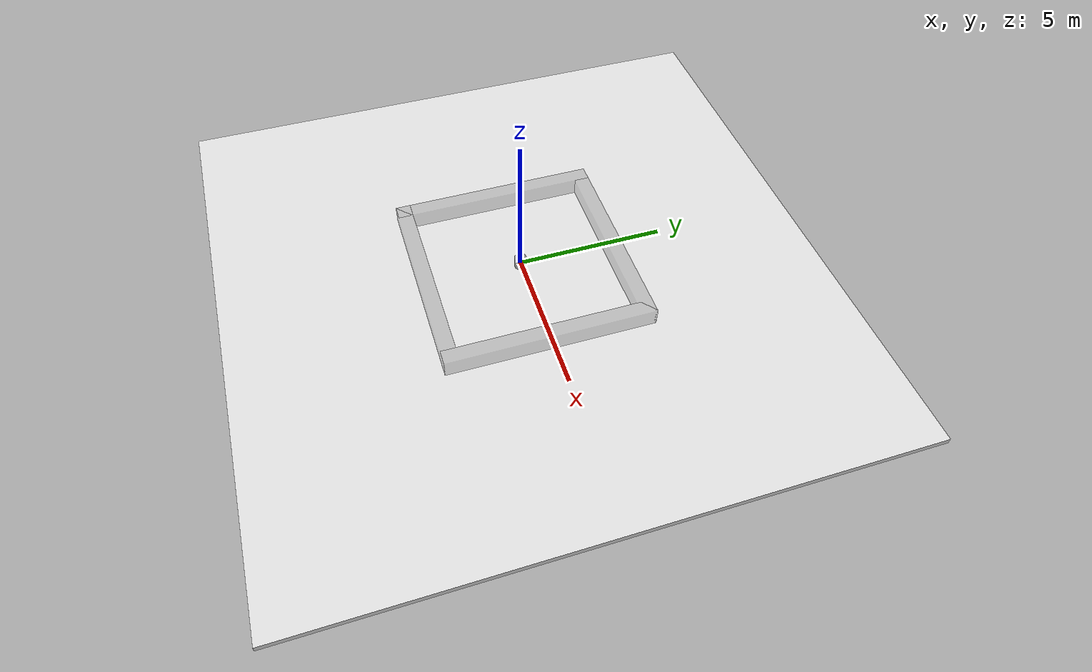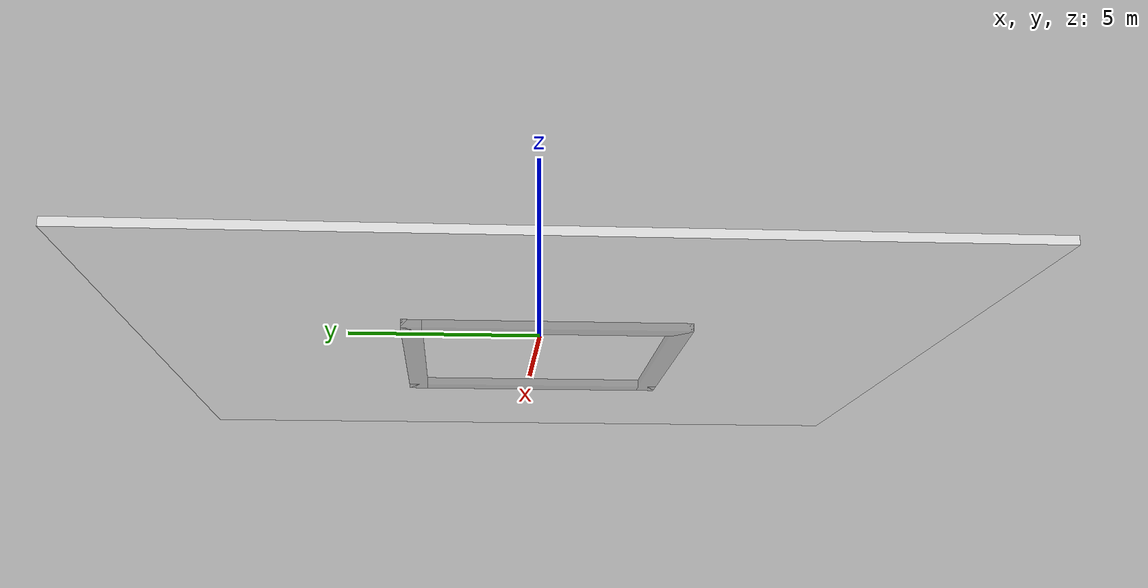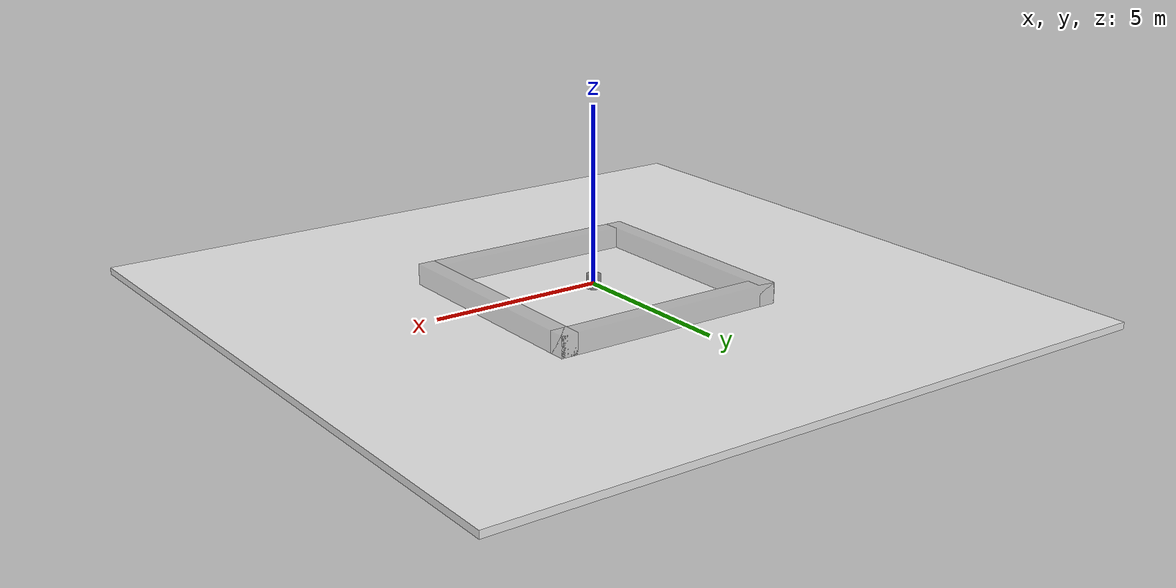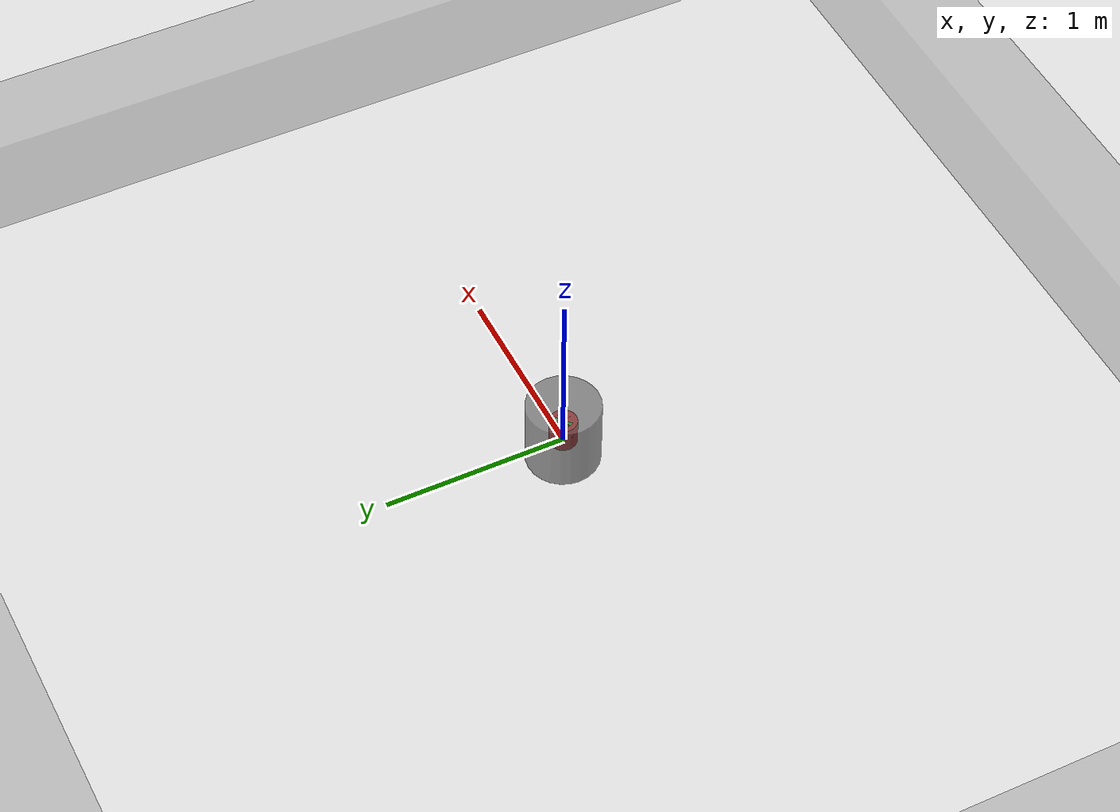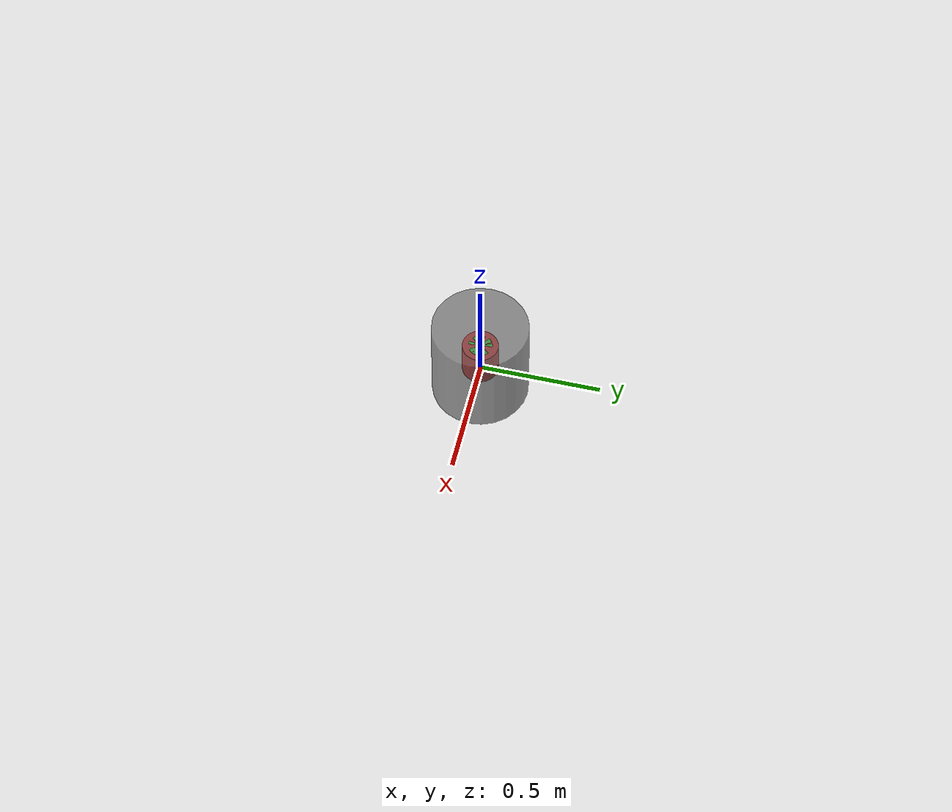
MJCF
<mujoco>
	<option gravity="0 0 0" timestep="0.02"/>
	<default>
		<geom rgba="0 0 0 1"/>
	</default>
	<worldbody>
		<light diffuse=".2 .2 .2" dir="0 0 -1" mode="track" pos="0 0 20"/>
		<body>
			<geom condim="3" mass="10000" name="floor" pos="0 0 -0.4" rgba=".9 .9 .9 1" size="10 10 .1" type="box"/>
			<camera mode="fixed" name="center"/>
			<camera axisangle="1 0 0 30" mode="fixed" name="30" pos="0 -5 10"/>
		</body>
		<body name="predator0" pos="0 0 0.075">
			<joint axis="1 0 0" damping="2.5" frictionloss="0" name="predator00" pos="0 0 0" type="slide"/>
			<joint axis="0 1 0" damping="2.5" frictionloss="0" name="predator01" pos="0 0 0" type="slide"/>
			<geom conaffinity="1" mass="1" rgba="1 0 0 1" size="0.075 0.075" solimp="0.9 0.9999 0.001 0.5 1" solref="0.5 0.2" type="cylinder"/>
			<site name="predator0" pos="-0.1 0 0.05" size="0.001" type="sphere"/>
		</body>
		<body name="predator1" pos="0 0 0.075">
			<joint axis="1 0 0" damping="2.5" frictionloss="0" name="predator10" pos="0 0 0" type="slide"/>
			<joint axis="0 1 0" damping="2.5" frictionloss="0" name="predator11" pos="0 0 0" type="slide"/>
			<geom conaffinity="1" mass="1" rgba="1 0 0 1" size="0.075 0.075" solimp="0.9 0.9999 0.001 0.5 1" solref="0.5 0.2" type="cylinder"/>
			<site name="predator1" pos="-0.1 0 0.05" size="0.001" type="sphere"/>
		</body>
		<body name="predator2" pos="0 0 0.075">
			<joint axis="1 0 0" damping="2.5" frictionloss="0" name="predator20" pos="0 0 0" type="slide"/>
			<joint axis="0 1 0" damping="2.5" frictionloss="0" name="predator21" pos="0 0 0" type="slide"/>
			<geom conaffinity="1" mass="1" rgba="1 0 0 1" size="0.075 0.075" solimp="0.9 0.9999 0.001 0.5 1" solref="0.5 0.2" type="cylinder"/>
			<site name="predator2" pos="-0.1 0 0.05" size="0.001" type="sphere"/>
		</body>
		<body name="prey0" pos="0 0 0.075">
			<joint axis="1 0 0" damping="2.5" frictionloss="0" name="prey00" pos="0 0 0" type="slide"/>
			<joint axis="0 1 0" damping="2.5" frictionloss="0" name="prey01" pos="0 0 0" type="slide"/>
			<geom conaffinity="1" mass="1" rgba="0 1 0 1" size="0.05 0.075" solimp="0.9 0.9999 0.001 0.5 1" solref="0.5 0.2" type="cylinder"/>
			<site name="prey0" pos="0.5 0 0.075" size="0.001" type="sphere"/>
		</body>
		<body name="block0" pos="0 0 0.075">
			<geom conaffinity="1" condim="3" mass="1" rgba="0.4 0.4 0.4 0.7" size="0.2 0.2" solimp="0.9 0.9999 0.001 0.5 1" solref="0.5 0.2" type="cylinder"/>
		</body>
		<body name="block1" pos="0 0 0.075">
			<geom conaffinity="1" condim="3" mass="1" rgba="0.4 0.4 0.4 0.7" size="0.2 0.2" solimp="0.9 0.9999 0.001 0.5 1" solref="0.5 0.2" type="cylinder"/>
		</body>
		<body>
			<geom condim="3" mass="10000" name="wall1" pos="-3.25 0 -0.2" rgba="0.4 0.4 0.4 0.3" size="0.25 3.5 0.5" type="box"/>
		</body>
		<body>
			<geom condim="3" mass="10000" name="wall2" pos="3.25 0 -0.2" rgba="0.4 0.4 0.4 0.3" size="0.25 3.5 0.5" type="box"/>
		</body>
		<body>
			<geom condim="3" mass="10000" name="wall3" pos="0 -3.25 -0.2" rgba="0.4 0.4 0.4 0.3" size="3.5 0.25 0.5" type="box"/>
		</body>
		<body>
			<geom condim="3" mass="10000" name="wall4" pos="0 3.25 -0.2" rgba="0.4 0.4 0.4 0.3" size="3.5 0.25 0.5" type="box"/>
		</body>
	</worldbody>
	<actuator>
		<motor gear="1" joint="predator00"/>
		<motor gear="1" joint="predator01"/>
		<motor gear="1" joint="predator10"/>
		<motor gear="1" joint="predator11"/>
		<motor gear="1" joint="predator20"/>
		<motor gear="1" joint="predator21"/>
		<motor gear="1" joint="prey00"/>
		<motor gear="1" joint="prey01"/>
	</actuator>
</mujoco>
